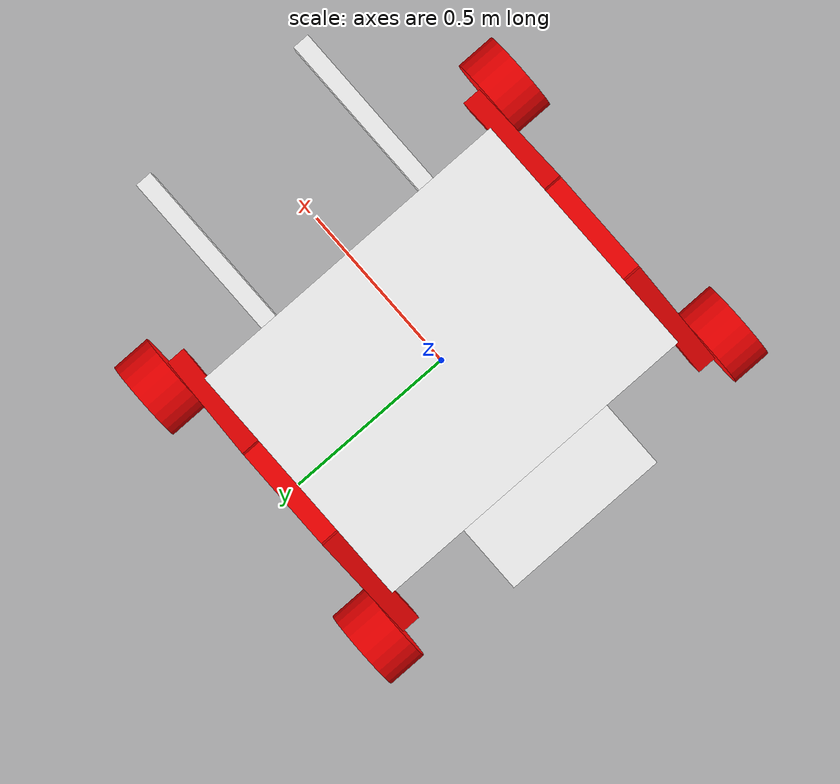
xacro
<?xml version="1.0"?>
<robot xmlns:xacro="http://www.ros.org/wiki/xacro" name="qset_rover">
    <xacro:include filename="$(find qset_launch)/models/gazebo.xacro"/>
    <xacro:include filename="$(find qset_launch)/models/realsense.xacro"/>
    <!--Materials start-->
    <material name="blue">
        <color rgba="0 0 0.8 1"/>
    </material>
    <material name="white">
        <color rgba="1 1 1 1"/>
    </material>

    <material name="red">
        <color rgba="1 0 0 1"/>
    </material>
    <!--Materials end-->

    <xacro:property name="width" value="1.0"/>
    <xacro:property name="front_length" value="0.5"/>
    <xacro:property name="mid_length" value="0.75"/>
    <xacro:property name="back_length" value="0.2"/>
    <xacro:property name="pontoon_width" value="0.05"/>
    <xacro:property name="back_width" value="0.5"/>
    <xacro:property name="thick" value="0.15"/>
    <xacro:property name="front_width" value="0.5"/>

    <xacro:property name="rocker_angle" value="0.61"/>
    <xacro:property name="rocker_horizontal_length" value="0.31" />
    <xacro:property name="rocker_diagonal_length" value="0.39"/>
    <xacro:property name="rocker_width" value="0.057"/>
    <xacro:property name="rocker_height" value="0.051"/>
    <xacro:property name="rocker_height_offset" value="0.22"/>
    <xacro:property name="wheel_radius" value="0.121"/>
    <xacro:property name="wheel_thickness" value="0.116"/>
    <xacro:property name="arm_base_width" value="0.15"/>
    <xacro:property name="arm_base_height" value="0.1"/>
    <xacro:property name="upper_arm_length" value="0.5"/>
    <xacro:property name="forearm_length" value="0.4"/>
    <xacro:property name="end_effector_length" value="0.2"/>
    <xacro:property name="end_effector_thickness" value="0.05"/>
    <xacro:property name="end_effector_width" value="0.1"/>
    <xacro:property name="arm_width" value="0.1"/>
    <xacro:property name="arm_height" value="0.05"/>
    <xacro:property name="rover_total_height" value="0.4"/>

    <xacro:macro name="default_inertial" params="mass">
        <inertial>
            <mass value="${mass}" />
            <inertia ixx="1.0" ixy="0.0" ixz="0.0"
                     iyy="1.0" iyz="0.0"
                     izz="1.0" />
        </inertial>
    </xacro:macro>

    <xacro:macro name="pontoon" params="side reflect">
        <link name="${side}_pontoon">
            <visual>
                <geometry>
                    <box size="${front_length} ${pontoon_width} ${thick}"/>
                </geometry>
                <material name="white"/>
            </visual>
            <collision>
                <geometry>
                    <box size="${front_length} ${pontoon_width} ${thick}"/>
                </geometry>
            </collision>
            <xacro:default_inertial mass="0.5"/>
        </link>
        <joint name="${side}_pontoon_base_joint" type="fixed">
            <parent link="base_link"/>
            <child link="${side}_pontoon"/>
            <origin rpy="0 0 0" xyz="${mid_length/2 + front_length/2} ${reflect * (front_width/2 + pontoon_width/2)} 0"/>
            <axis xyz="0 0 0"/>
        </joint>
    </xacro:macro>

    <xacro:macro name="wheel" params="side location reflect_lr reflect_fb">
        <link name="${location}_${side}_wheel">
            <visual>
                <geometry>
                    <cylinder length="${wheel_thickness}" radius="${wheel_radius}"/>
                </geometry>
                <material name="red"/>
            </visual>

            <collision>
                <geometry>
                    <cylinder length="${wheel_thickness}" radius="${wheel_radius}"/>
                </geometry>
            </collision>
            <xacro:default_inertial mass="2"/>
        </link>
        <joint name="${location}_${side}_wheel_joint" type="continuous">
            <parent link="${location}_${side}_diagonal"/>
            <child link="${location}_${side}_wheel"/>
            <origin xyz="${(rocker_diagonal_length / 2 - rocker_height / 2) * reflect_fb} ${(rocker_width / 2 + wheel_thickness / 2) * reflect_lr} 0" rpy="-1.570795 0 0"/>
            <axis xyz="0 0 1"/>

        </joint>

        <transmission name="${location}_${side}_wheel_trans">
            <type>transmission_interface/SimpleTransmission</type>
            <actuator name="${location}_${side}_wheel_motor">
                <mechanicalReduction>1</mechanicalReduction>
            </actuator>
            <joint name="${location}_${side}_wheel_joint">
                <hardwareInterface>VelocityJointInterface</hardwareInterface>
            </joint>
        </transmission>
        <gazebo reference="${location}_${side}_wheel">
            <mu1 value="0.5"/>
            <mu2 value="0.5"/>
            <kp value="1000000.0" />
            <kd value="100.0" />
            <material>Gazebo/Grey</material>
        </gazebo>
    </xacro:macro>

    <xacro:macro name="arm">
        <link name="arm_base">
            <visual>
                <geometry>
                    <box size="${arm_base_width} ${elec_box_width} ${arm_base_height}"/>
                </geometry>
            </visual>
            <collision>
                <geometry>
                    <box size="${arm_base_width} ${elec_box_width} ${arm_base_height}"/>
                </geometry>
            </collision>
            <xacro:default_inertial mass="1"/>
        </link>
        <joint name="base_to_arm_base_joint" type="fixed">
            <parent link="base_link"/>
            <child link="arm_base"/>
            <origin rpy="0 0 0" xyz="${pontoon_length/2 - arm_base_width/2 + pontoon_length/2 - elec_box_depth} 0 0"/>
        </joint>

        <link name="upper_arm">
            <visual>
                <geometry>
                    <box size="${arm_height} ${arm_width} ${upper_arm_length}"/>
                </geometry>
                <origin xyz="0 0 ${upper_arm_length/2 }" rpy="0 0 0"/>
            </visual>
            <collision>
                <origin xyz="0 0 ${upper_arm_length/2 }" rpy="0 0 0"/>
                <geometry>
                    <box size="${arm_height} ${arm_width} ${upper_arm_length}"/>
                </geometry>
            </collision>
            <xacro:default_inertial mass="1"/>

        </link>
        <joint name="shoulder" type="revolute">
            <parent link="arm_base"/>
            <child link="upper_arm"/>
            <origin xyz="0 0 ${arm_base_height / 2}" rpy="0 0 0"/>
            <axis xyz="0 1 0"/>
            <limit lower="${-3.14159/2}" upper="${3.14159/2}" effort="100" velocity="3"/>
            <dynamics damping="2.0"/>
        </joint>
        <transmission name="shoulder_trans">
            <type>transmission_interface/SimpleTransmission</type>
            <actuator name="shoulder_motor">
                <mechanicalReduction>1</mechanicalReduction>
            </actuator>
            <joint name="shoulder">
                <hardwareInterface>EffortJointInterface</hardwareInterface>
            </joint>
        </transmission>
        <link name="forearm">
            <visual>
                <geometry>
                    <box size="${arm_height} ${arm_width} ${forearm_length}"/>
                </geometry>
                <origin xyz="0 0 ${forearm_length/2 }" rpy="0 0 0"/>
            </visual>
            <collision>
                <origin xyz="0 0 ${forearm_length/2 }" rpy="0 0 0"/>
                <geometry>
                    <box size="${arm_height} ${arm_width} ${forearm_length}"/>
                </geometry>
            </collision>
            <xacro:default_inertial mass="1"/>
        </link>
        <joint name="elbow" type="revolute">
            <parent link="upper_arm"/>
            <child link="forearm"/>
            <origin xyz="0 0 ${upper_arm_length}" rpy="0 0 0"/>
            <axis xyz="0 1 0"/>
            <limit lower="${-3.14159+0.5}" upper="${3.14159-0.5}" effort="100" velocity="3"/>
            <dynamics damping="2.0"/>
        </joint>
        <transmission name="elbow_trans">
            <type>transmission_interface/SimpleTransmission</type>
            <actuator name="elbow_motor">
                <mechanicalReduction>1</mechanicalReduction>
            </actuator>
            <joint name="elbow">
                <hardwareInterface>EffortJointInterface</hardwareInterface>
            </joint>
        </transmission>

        <link name="end_effector">
            <visual>
                <geometry>
                    <box size="${arm_height} ${arm_width} ${end_effector_length}"/>
                </geometry>
                <origin xyz="0 0 ${end_effector_length/2 }" rpy="0 0 0"/>
            </visual>
            <collision>
                <origin xyz="0 0 ${end_effector_length/2 }" rpy="0 0 0"/>
                <geometry>
                    <box size="${arm_height} ${arm_width} ${end_effector_length}"/>
                </geometry>
            </collision>
            <xacro:default_inertial mass="1"/>
        </link>
        <joint name="wrist_pitch" type="revolute">
            <parent link="forearm"/>
            <child link="end_effector"/>
            <origin xyz="0 0 ${forearm_length}" rpy="0 0 0"/>
            <axis xyz="0 1 0"/>
            <limit lower="${-3.14159+0.5}" upper="${3.14159-0.5}" effort="100" velocity="3"/>
            <dynamics damping="2.0"/>
        </joint>
        <transmission name="wrist_pitch_trans">
            <type>transmission_interface/SimpleTransmission</type>
            <actuator name="wrist_pitch_motor">
                <mechanicalReduction>1</mechanicalReduction>
            </actuator>
            <joint name="wrist_pitch">
                <hardwareInterface>EffortJointInterface</hardwareInterface>
            </joint>
        </transmission>
    </xacro:macro>

    <xacro:macro name="rocker" params="side reflect">
        <xacro:macro name="diagonal" params="location reflect_diag">
            <link name="${location}_${side}_diagonal">
                <visual>
                    <geometry>
                        <box size="${rocker_diagonal_length} ${rocker_width} ${rocker_height}"/>
                    </geometry>
                    <material name="red"/>
                </visual>
                <collision>
                    <geometry>
                        <box size="${rocker_diagonal_length} ${rocker_width} ${rocker_height}"/>
                    </geometry>
                </collision>
                <xacro:default_inertial mass="1"/>
            </link>
            <joint name="${side}_rocker_to_${location}_diagonal" type="fixed">
                <parent link="${side}_rocker_horizontal"/>
                <child link="${location}_${side}_diagonal"/>
                <origin rpy="0 ${rocker_angle * reflect_diag} 0 " xyz="${(rocker_horizontal_length / 2  + rocker_height + 0.1)* reflect_diag} 0 ${rocker_height_offset / -2}"/>
            </joint>

        </xacro:macro>
        <link name="${side}_rocker_horizontal">
            <visual>
                <geometry>
                    <box size="${rocker_horizontal_length} ${rocker_width} ${rocker_height}"/>
                </geometry>
                <material name="red"/>
            </visual>
            <collision>
                <geometry>
                    <box size="${rocker_horizontal_length} ${rocker_width} ${rocker_height}"/>
                </geometry>
            </collision>
            <xacro:default_inertial mass="2"/>
        </link>
        <joint name="${side}_base_to_rocker" type="fixed">
            <parent link="base_link"/>
            <child link="${side}_rocker_horizontal"/>
            <origin rpy="0 0 0" xyz="-0.0 ${(width / 2 + rocker_width / 2) * reflect} 0"/>
        </joint>
        <xacro:diagonal location="front" reflect_diag="1"/>
        <xacro:diagonal location="back" reflect_diag="-1"/>

    </xacro:macro>

    <link name="base_link">
        <visual>
            <geometry>
                <box size="${mid_length} ${width} ${thick}"/>
            </geometry>
            <origin rpy="0 0 0" xyz="0 0 0"/>
            <material name="white"/>
        </visual>
        <collision>
            <geometry>
                <box size="${mid_length} ${width} ${thick}"/>
            </geometry>
        </collision>
        <xacro:default_inertial mass="5"/>
    </link>
    <link name="back_link">
        <visual>
            <geometry>
                <box size="${back_length} ${back_width} ${thick}"/>
            </geometry>
            <origin rpy="0 0 0" xyz="0 0 0"/>
            <material name="white"/>
        </visual>
        <collision>
            <geometry>
                <box size="${back_length} ${back_width} ${thick}"/>
            </geometry>
        </collision>
        <xacro:default_inertial mass="1"/>
    </link>

    <joint name="mid_to_back_link" type="fixed">
        <parent link="base_link"/>
        <child link="back_link"/>
        <origin rpy="0 0 0" xyz="${-mid_length/2 - back_length/2} 0 0"/>
    </joint>

    <xacro:pontoon side="right" reflect="-1"/>
    <xacro:pontoon side="left" reflect="1"/>
    <xacro:rocker side="right" reflect="-1"/>
    <xacro:rocker side="left" reflect="1"/>
    <xacro:wheel side="left" location="front" reflect_lr="1" reflect_fb="1"/>
    <xacro:wheel side="right" location="front" reflect_lr="-1" reflect_fb="1"/>
    <xacro:wheel side="left" location="back" reflect_lr="1" reflect_fb="-1"/>
    <xacro:wheel side="right" location="back" reflect_lr="-1" reflect_fb="-1"/>

    <gazebo>
        <plugin name="gazebo_ros_control" filename="libgazebo_ros_control.so">
            <robotNamespace>/</robotNamespace>
        </plugin>
        <plugin name="robot_gps_sim" filename="libhector_gazebo_ros_gps.so">
            <alwaysOn>true</alwaysOn>
            <updateRate>20.0</updateRate>
            <bodyName>base_link</bodyName>
            <topicName>fix</topicName>
            <velocityTopicName>gps_velocity</velocityTopicName>
            <drift>0.0 0.0 0.0</drift>
            <gaussianNoise>0.000 0.000 0.000</gaussianNoise>
            <velocityDrift>0 0 0</velocityDrift>
            <velocityGaussianNoise>0.00 0.00 0.00</velocityGaussianNoise>
            <frameId>map</frameId>
        </plugin>
        <plugin name="robot_imu_sim" filename="libhector_gazebo_ros_imu.so">
            <alwaysOn>true</alwaysOn>
            <updateRate>100.0</updateRate>
            <bodyName>base_link</bodyName>
            <frameID>base_link</frameID>
            <topicName>imu</topicName>
            <xyzOffset>0.0 0.0 0.0</xyzOffset>
            <rpyOffset>0.0 0.0 0.0</rpyOffset>
            <gaussianNoise>0</gaussianNoise>
            <accelDrift>0.0 0.0 0.5</accelDrift>
            <accelGaussianNoise>0.0 0.0.0</accelGaussianNoise>
            <rateDrift>0.0 0.0 0.0</rateDrift>
            <rateGaussianNoise>0.00 0.00 0.00</rateGaussianNoise>
            <headingDrift>0.0</headingDrift>
            <headingGaussianNoise>0.00</headingGaussianNoise>
        </plugin>
        <plugin name="magnetometer" filename="libhector_gazebo_ros_magnetic.so">
            <updateRate>20.0</updateRate>
            <bodyname>base_link</bodyname>
            <topicName>magnetometerStatus</topicName>
            <referenceHeading>0.0</referenceHeading>
            <declination>3.0333</declination>
            <inclination>60.0</inclination>
            <offset>0 0 0</offset>
            <driftFrequency>0 0 0</driftFrequency>
            <gaussianNoise>0 0 0</gaussianNoise>
            <frameId>map</frameId>
        </plugin>
    </gazebo>

</robot>
